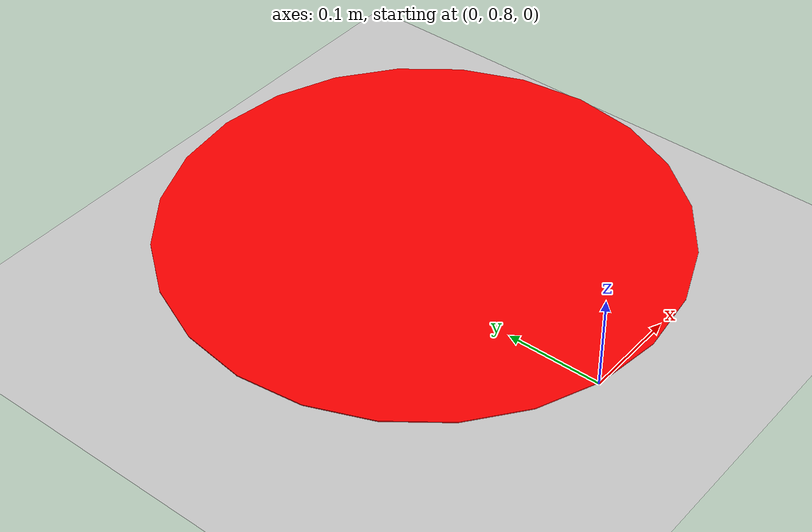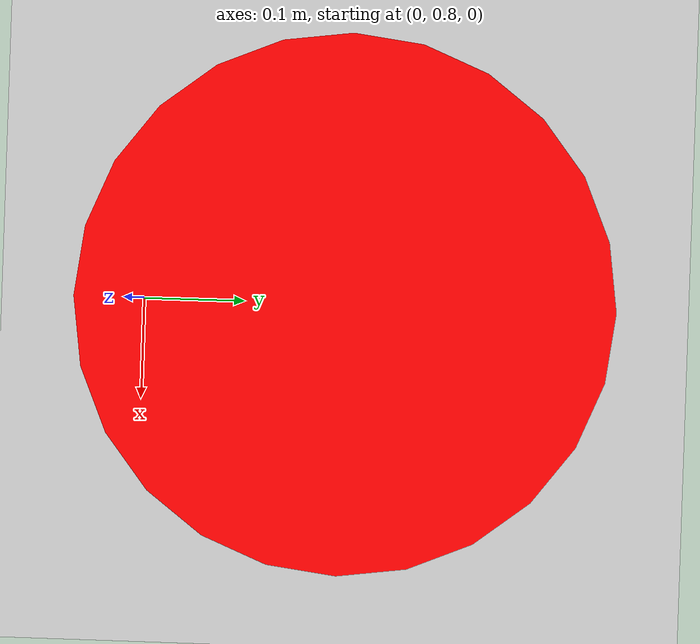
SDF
<?xml version="1.0" ?>
<sdf version="1.4">
  <world name="default">

    <plugin name="ros_interface_plugin" filename="librotors_gazebo_ros_interface_plugin.so"/>

    <spherical_coordinates>
      <surface_model>EARTH_WGS84</surface_model>
      <latitude_deg>47.3667</latitude_deg>
      <longitude_deg>8.5500</longitude_deg>
      <elevation>500.0</elevation>
      <heading_deg>0</heading_deg>
    </spherical_coordinates>
    <physics type='ode'>
      <ode>
        <solver>
          <type>quick</type>
          <iters>1000</iters>
          <sor>1.3</sor>
        </solver>
        <constraints>
          <cfm>0</cfm>
          <erp>0.2</erp>
          <contact_max_correcting_vel>100</contact_max_correcting_vel>
          <contact_surface_layer>0.001</contact_surface_layer>
        </constraints>
      </ode>
      <max_step_size>0.002</max_step_size>
      <real_time_factor>1</real_time_factor>
      <real_time_update_rate>500</real_time_update_rate>
      <gravity>0 0 -9.8</gravity>
    </physics>

    <!-- Global light source -->
    <light type="directional" name="sun1">
      <pose>50 0 150 0 0 0</pose>
      <diffuse>1 1 1 1</diffuse>
      <specular>.1 .1 .1 1</specular>
      <direction>0.3 0.3 -1</direction>
      <cast_shadows>false</cast_shadows>
    </light>

    <!-- Global light source -->
    <light type="directional" name="sun_diffuse">
      <pose>-50 0 -150 0 0 0</pose>
      <diffuse>0.6 0.6 0.6 1</diffuse>
      <specular>0 0 0 1</specular>
      <direction>-0.3 -0.3 -1</direction>
      <cast_shadows>false</cast_shadows>
    </light>

    <scene>
      <ambient>0.01 0.01 0.01 1.0</ambient>
      <sky>
        <clouds>
          <speed>12</speed>
        </clouds>
      </sky>
      <shadows>1</shadows>
      <fog>
        <color>0.1 0.2 0.3 1.0</color>
        <type>linear</type>
        <density>0.1</density>
        <start>10</start>
        <end>40</end>
      </fog>
    </scene>

    <include>
      <uri>model://ground_plane</uri>
    </include>

    <include>
      <uri>model://goal_box</uri>
      <pose>0.0 1.0 0.05 0 0 0</pose>
      <name>goal_box</name>
    </include>

    <!-- Heightmap -->

  </world>
</sdf>

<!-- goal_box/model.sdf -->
<sdf version='1.6'>
  <model name='goal_box'>
    <pose frame=''>0 0 0 0 -0 -1.5708</pose>
    <link name='goal_box'>
      <visual name='goal_box'>
        <pose frame=''>0 0 0.03 0 -0 0</pose>
        <geometry>
          <cylinder>
            <radius>0.25</radius>
            <length>0.001</length>
          </cylinder>
        </geometry>
        <material>
          <script>
            <uri>file://media/materials/scripts/gazebo.material</uri>
            <name>Gazebo/Grey</name>
          </script>
          <ambient>1 0 0 1</ambient>
        </material>
      </visual>
      <pose frame=''>0 0 0 0 0 0</pose>
    </link>
    <static>1</static>
  </model>
</sdf>
